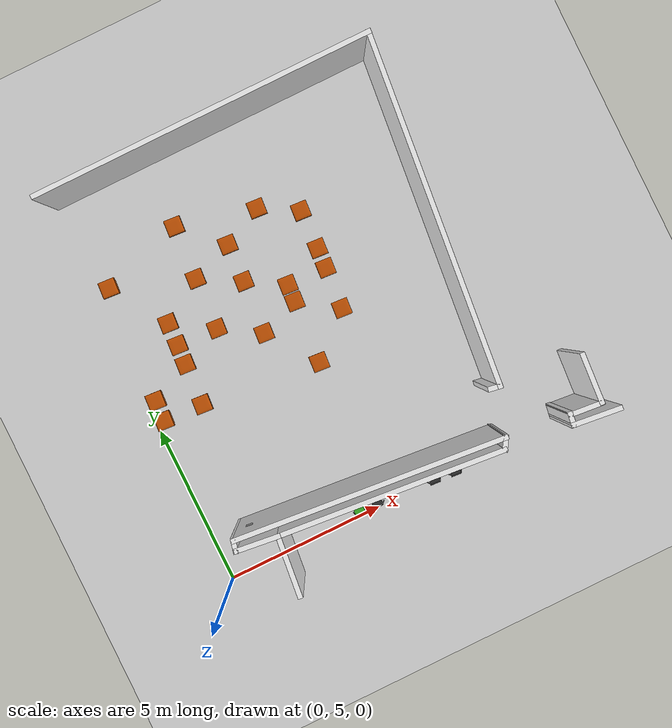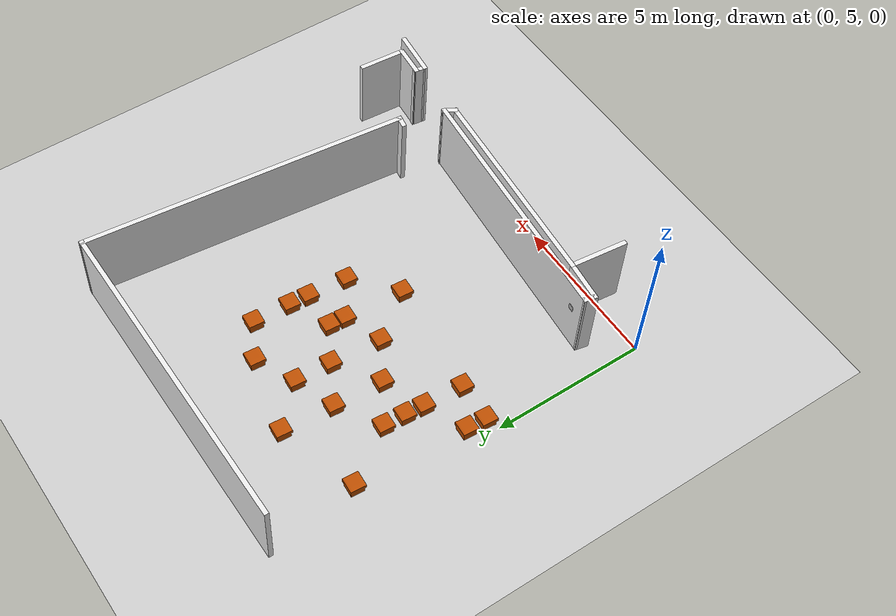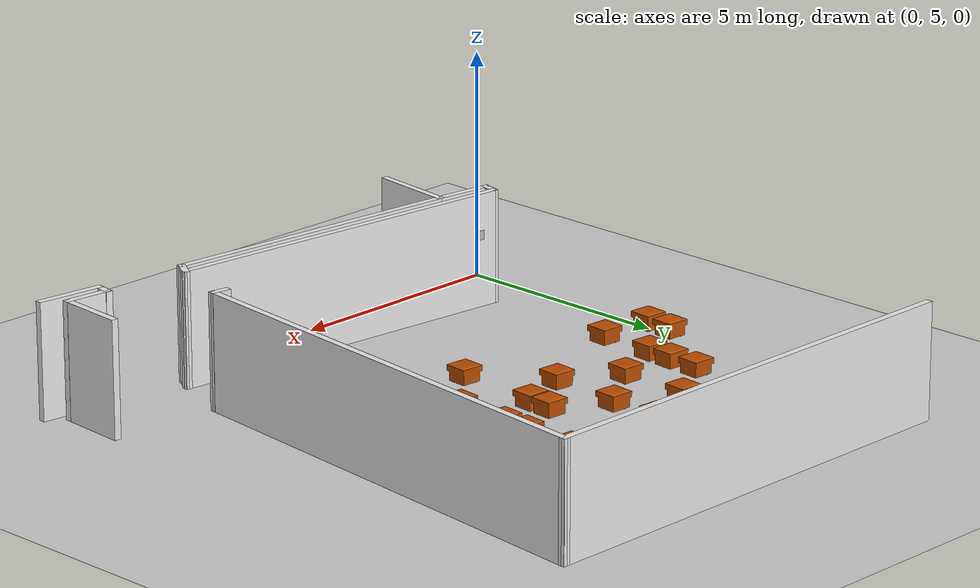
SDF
<sdf version="1.6">
 <world name="default">
  <model name="ground_plane">
   <static>1</static>
   <link name="link">
    <collision name="collision">
     <geometry><plane><normal>0 0 1</normal><size>100 100</size></plane></geometry>
     <surface><friction><ode><mu>100</mu><mu2>50</mu2></ode></friction></surface>
    </collision>
    <visual name="visual">
     <cast_shadows>0</cast_shadows>
     <geometry><plane><normal>0 0 1</normal><size>100 100</size></plane></geometry>
     <material>
      <script><uri>file://media/materials/scripts/gazebo.material</uri><name>Gazebo/Grey</name></script>
     </material>
    </visual>
   </link>
  </model>
  <model name="ucu_basic_frame.world">
   <link name="Wall_264">
    <pose>0.222214 2.68141 0 0 0 -1.79253</pose>
    <visual name="Wall_264_Visual">
     <pose>0 0 1.25 0 -0 0</pose>
     <geometry><box><size>0.445131 0.15 2.5</size></box></geometry>
     <material>
      <script><uri>file://media/materials/scripts/gazebo.material</uri><name>Gazebo/White</name></script>
      <ambient>1 1 1 1</ambient>
      <diffuse>1 1 1 1</diffuse>
      <specular>0 0 0 1</specular>
      <emissive>0 0 0 1</emissive>
     </material>
     <meta><layer>0</layer></meta>
    </visual>
    <collision name="Wall_264_Collision">
     <pose>0 0 1.25 0 -0 0</pose>
     <geometry><box><size>0.445131 0.15 2.5</size></box></geometry>
     <surface>
      <friction>
       <ode><mu>1</mu><mu2>1</mu2><fdir1>0 0 0</fdir1><slip1>0</slip1><slip2>0</slip2></ode>
       <torsional>
        <coefficient>1</coefficient>
        <patch_radius>0</patch_radius>
        <surface_radius>0</surface_radius>
        <use_patch_radius>1</use_patch_radius>
        <ode><slip>0</slip></ode>
       </torsional>
      </friction>
      <bounce><restitution_coefficient>0</restitution_coefficient><threshold>1e+06</threshold></bounce>
      <contact>
       <collide_without_contact>0</collide_without_contact>
       <collide_without_contact_bitmask>1</collide_without_contact_bitmask>
       <collide_bitmask>1</collide_bitmask>
       <ode>
        <soft_cfm>0</soft_cfm>
        <soft_erp>0.2</soft_erp>
        <kp>1e+13</kp>
        <kd>1</kd>
        <max_vel>0.01</max_vel>
        <min_depth>0</min_depth>
       </ode>
       <bullet>
        <split_impulse>1</split_impulse>
        <split_impulse_penetration_threshold>-0.01</split_impulse_penetration_threshold>
        <soft_cfm>0</soft_cfm>
        <soft_erp>0.2</soft_erp>
        <kp>1e+13</kp>
        <kd>1</kd>
       </bullet>
      </contact>
     </surface>
    </collision>
   </link>
   <link name="Wall_265">
    <pose>0.817825 2.46551 0 0 0 -0.1169</pose>
    <inertial>
     <mass>1</mass>
     <inertia><ixx>1</ixx><ixy>0</ixy><ixz>0</ixz><iyy>1</iyy><iyz>0</iyz><izz>1</izz></inertia>
    </inertial>
    <visual name="Wall_265_Visual">
     <pose>0 0 1.25 0 -0 0</pose>
     <geometry><box><size>1.38367 0.15 2.5</size></box></geometry>
     <material>
      <script><uri>file://media/materials/scripts/gazebo.material</uri><name>Gazebo/White</name></script>
      <ambient>1 1 1 1</ambient>
      <diffuse>1 1 1 1</diffuse>
      <specular>0 0 0 1</specular>
      <emissive>0 0 0 1</emissive>
      <shader type="vertex"><normal_map>__default__</normal_map></shader>
     </material>
     <meta><layer>0</layer></meta>
    </visual>
    <collision name="Wall_265_Collision">
     <pose>0 0 1.25 0 -0 0</pose>
     <geometry><box><size>1.38367 0.15 2.5</size></box></geometry>
     <surface>
      <friction>
       <ode><mu>1</mu><mu2>1</mu2><fdir1>0 0 0</fdir1><slip1>0</slip1><slip2>0</slip2></ode>
       <torsional>
        <coefficient>1</coefficient>
        <patch_radius>0</patch_radius>
        <surface_radius>0</surface_radius>
        <use_patch_radius>1</use_patch_radius>
        <ode><slip>0</slip></ode>
       </torsional>
      </friction>
      <bounce><restitution_coefficient>0</restitution_coefficient><threshold>1e+06</threshold></bounce>
      <contact>
       <collide_without_contact>0</collide_without_contact>
       <collide_without_contact_bitmask>1</collide_without_contact_bitmask>
       <collide_bitmask>1</collide_bitmask>
       <ode>
        <soft_cfm>0</soft_cfm>
        <soft_erp>0.2</soft_erp>
        <kp>1e+13</kp>
        <kd>1</kd>
        <max_vel>0.01</max_vel>
        <min_depth>0</min_depth>
       </ode>
       <bullet>
        <split_impulse>1</split_impulse>
        <split_impulse_penetration_threshold>-0.01</split_impulse_penetration_threshold>
        <soft_cfm>0</soft_cfm>
        <soft_erp>0.2</soft_erp>
        <kp>1e+13</kp>
        <kd>1</kd>
       </bullet>
      </contact>
     </surface>
    </collision>
   </link>
   <link name="Wall_267">
    <pose>4.30052 2.44738 0 0 0 -0.093156</pose>
    <visual name="Wall_267_Visual">
     <pose>0 0 1.25 0 -0 0</pose>
     <geometry><box><size>8.27695 0.15 2.5</size></box></geometry>
     <material>
      <script><uri>file://media/materials/scripts/gazebo.material</uri><name>Gazebo/White</name></script>
      <ambient>1 1 1 1</ambient>
      <diffuse>1 1 1 1</diffuse>
      <specular>0 0 0 1</specular>
      <emissive>0 0 0 1</emissive>
     </material>
     <meta><layer>0</layer></meta>
    </visual>
    <collision name="Wall_267_Collision">
     <pose>0 0 1.25 0 -0 0</pose>
     <geometry><box><size>8.27695 0.15 2.5</size></box></geometry>
     <surface>
      <friction>
       <ode><mu>1</mu><mu2>1</mu2><fdir1>0 0 0</fdir1><slip1>0</slip1><slip2>0</slip2></ode>
       <torsional>
        <coefficient>1</coefficient>
        <patch_radius>0</patch_radius>
        <surface_radius>0</surface_radius>
        <use_patch_radius>1</use_patch_radius>
        <ode><slip>0</slip></ode>
       </torsional>
      </friction>
      <bounce><restitution_coefficient>0</restitution_coefficient><threshold>1e+06</threshold></bounce>
      <contact>
       <collide_without_contact>0</collide_without_contact>
       <collide_without_contact_bitmask>1</collide_without_contact_bitmask>
       <collide_bitmask>1</collide_bitmask>
       <ode>
        <soft_cfm>0</soft_cfm>
        <soft_erp>0.2</soft_erp>
        <kp>1e+13</kp>
        <kd>1</kd>
        <max_vel>0.01</max_vel>
        <min_depth>0</min_depth>
       </ode>
       <bullet>
        <split_impulse>1</split_impulse>
        <split_impulse_penetration_threshold>-0.01</split_impulse_penetration_threshold>
        <soft_cfm>0</soft_cfm>
        <soft_erp>0.2</soft_erp>
        <kp>1e+13</kp>
        <kd>1</kd>
       </bullet>
      </contact>
     </surface>
    </collision>
   </link>
   <link name="Wall_268">
    <pose>8.26147 1.92273 0 0 0 -2.09559</pose>
    <visual name="Wall_268_Visual">
     <pose>0 0 1.25 0 -0 0</pose>
     <geometry><box><size>0.488919 0.15 2.5</size></box></geometry>
     <material>
      <script><uri>file://media/materials/scripts/gazebo.material</uri><name>Gazebo/White</name></script>
      <ambient>1 1 1 1</ambient>
      <diffuse>1 1 1 1</diffuse>
      <specular>0 0 0 1</specular>
      <emissive>0 0 0 1</emissive>
     </material>
     <meta><layer>0</layer></meta>
    </visual>
    <collision name="Wall_268_Collision">
     <pose>0 0 1.25 0 -0 0</pose>
     <geometry><box><size>0.488919 0.15 2.5</size></box></geometry>
     <surface>
      <friction>
       <ode><mu>1</mu><mu2>1</mu2><fdir1>0 0 0</fdir1><slip1>0</slip1><slip2>0</slip2></ode>
       <torsional>
        <coefficient>1</coefficient>
        <patch_radius>0</patch_radius>
        <surface_radius>0</surface_radius>
        <use_patch_radius>1</use_patch_radius>
        <ode><slip>0</slip></ode>
       </torsional>
      </friction>
      <bounce><restitution_coefficient>0</restitution_coefficient><threshold>1e+06</threshold></bounce>
      <contact>
       <collide_without_contact>0</collide_without_contact>
       <collide_without_contact_bitmask>1</collide_without_contact_bitmask>
       <collide_bitmask>1</collide_bitmask>
       <ode>
        <soft_cfm>0</soft_cfm>
        <soft_erp>0.2</soft_erp>
        <kp>1e+13</kp>
        <kd>1</kd>
        <max_vel>0.01</max_vel>
        <min_depth>0</min_depth>
       </ode>
       <bullet>
        <split_impulse>1</split_impulse>
        <split_impulse_penetration_threshold>-0.01</split_impulse_penetration_threshold>
        <soft_cfm>0</soft_cfm>
        <soft_erp>0.2</soft_erp>
        <kp>1e+13</kp>
        <kd>1</kd>
       </bullet>
      </contact>
     </surface>
    </collision>
   </link>
   <link name="Wall_269">
    <pose>4.80351 2.08482 0 0 -0 3.05031</pose>
    <visual name="Wall_269_Visual">
     <pose>0 0 1.25 0 -0 0</pose>
     <geometry><box><size>6.92432 0.15 2.5</size></box></geometry>
     <material>
      <script><uri>file://media/materials/scripts/gazebo.material</uri><name>Gazebo/White</name></script>
      <ambient>1 1 1 1</ambient>
      <diffuse>1 1 1 1</diffuse>
      <specular>0 0 0 1</specular>
      <emissive>0 0 0 1</emissive>
     </material>
     <meta><layer>0</layer></meta>
    </visual>
    <collision name="Wall_269_Collision">
     <pose>0 0 1.25 0 -0 0</pose>
     <geometry><box><size>6.92432 0.15 2.5</size></box></geometry>
     <surface>
      <friction>
       <ode><mu>1</mu><mu2>1</mu2><fdir1>0 0 0</fdir1><slip1>0</slip1><slip2>0</slip2></ode>
       <torsional>
        <coefficient>1</coefficient>
        <patch_radius>0</patch_radius>
        <surface_radius>0</surface_radius>
        <use_patch_radius>1</use_patch_radius>
        <ode><slip>0</slip></ode>
       </torsional>
      </friction>
      <bounce><restitution_coefficient>0</restitution_coefficient><threshold>1e+06</threshold></bounce>
      <contact>
       <collide_without_contact>0</collide_without_contact>
       <collide_without_contact_bitmask>1</collide_without_contact_bitmask>
       <collide_bitmask>1</collide_bitmask>
       <ode>
        <soft_cfm>0</soft_cfm>
        <soft_erp>0.2</soft_erp>
        <kp>1e+13</kp>
        <kd>1</kd>
        <max_vel>0.01</max_vel>
        <min_depth>0</min_depth>
       </ode>
       <bullet>
        <split_impulse>1</split_impulse>
        <split_impulse_penetration_threshold>-0.01</split_impulse_penetration_threshold>
        <soft_cfm>0</soft_cfm>
        <soft_erp>0.2</soft_erp>
        <kp>1e+13</kp>
        <kd>1</kd>
       </bullet>
      </contact>
     </surface>
    </collision>
   </link>
   <link name="Wall_272">
    <pose>1.33783 1.51364 0 0 0 -1.67567</pose>
    <visual name="Wall_272_Visual">
     <pose>0 0 1.25 0 -0 0</pose>
     <geometry><box><size>1.91958 0.15 2.5</size></box></geometry>
     <material>
      <script><uri>file://media/materials/scripts/gazebo.material</uri><name>Gazebo/White</name></script>
      <ambient>1 1 1 1</ambient>
      <diffuse>1 1 1 1</diffuse>
      <specular>0 0 0 1</specular>
      <emissive>0 0 0 1</emissive>
     </material>
     <meta><layer>0</layer></meta>
    </visual>
    <collision name="Wall_272_Collision">
     <pose>0 0 1.25 0 -0 0</pose>
     <geometry><box><size>1.91958 0.15 2.5</size></box></geometry>
     <surface>
      <friction>
       <ode><mu>1</mu><mu2>1</mu2><fdir1>0 0 0</fdir1><slip1>0</slip1><slip2>0</slip2></ode>
       <torsional>
        <coefficient>1</coefficient>
        <patch_radius>0</patch_radius>
        <surface_radius>0</surface_radius>
        <use_patch_radius>1</use_patch_radius>
        <ode><slip>0</slip></ode>
       </torsional>
      </friction>
      <bounce><restitution_coefficient>0</restitution_coefficient><threshold>1e+06</threshold></bounce>
      <contact>
       <collide_without_contact>0</collide_without_contact>
       <collide_without_contact_bitmask>1</collide_without_contact_bitmask>
       <collide_bitmask>1</collide_bitmask>
       <ode>
        <soft_cfm>0</soft_cfm>
        <soft_erp>0.2</soft_erp>
        <kp>1e+13</kp>
        <kd>1</kd>
        <max_vel>0.01</max_vel>
        <min_depth>0</min_depth>
       </ode>
       <bullet>
        <split_impulse>1</split_impulse>
        <split_impulse_penetration_threshold>-0.01</split_impulse_penetration_threshold>
        <soft_cfm>0</soft_cfm>
        <soft_erp>0.2</soft_erp>
        <kp>1e+13</kp>
        <kd>1</kd>
       </bullet>
      </contact>
     </surface>
    </collision>
   </link>
   <link name="Wall_309">
    <pose>10.8836 1.47565 0 0 -0 3.03093</pose>
    <visual name="Wall_309_Visual">
     <pose>0 0 1.25 0 -0 0</pose>
     <geometry><box><size>1.52674 0.15 2.5</size></box></geometry>
     <material>
      <script><uri>file://media/materials/scripts/gazebo.material</uri><name>Gazebo/White</name></script>
      <ambient>1 1 1 1</ambient>
      <diffuse>1 1 1 1</diffuse>
      <specular>0 0 0 1</specular>
      <emissive>0 0 0 1</emissive>
     </material>
     <meta><layer>0</layer></meta>
    </visual>
    <collision name="Wall_309_Collision">
     <pose>0 0 1.25 0 -0 0</pose>
     <geometry><box><size>1.52674 0.15 2.5</size></box></geometry>
     <surface>
      <friction>
       <ode><mu>1</mu><mu2>1</mu2><fdir1>0 0 0</fdir1><slip1>0</slip1><slip2>0</slip2></ode>
       <torsional>
        <coefficient>1</coefficient>
        <patch_radius>0</patch_radius>
        <surface_radius>0</surface_radius>
        <use_patch_radius>1</use_patch_radius>
        <ode><slip>0</slip></ode>
       </torsional>
      </friction>
      <bounce><restitution_coefficient>0</restitution_coefficient><threshold>1e+06</threshold></bounce>
      <contact>
       <collide_without_contact>0</collide_without_contact>
       <collide_without_contact_bitmask>1</collide_without_contact_bitmask>
       <collide_bitmask>1</collide_bitmask>
       <ode>
        <soft_cfm>0</soft_cfm>
        <soft_erp>0.2</soft_erp>
        <kp>1e+13</kp>
        <kd>1</kd>
        <max_vel>0.01</max_vel>
        <min_depth>0</min_depth>
       </ode>
       <bullet>
        <split_impulse>1</split_impulse>
        <split_impulse_penetration_threshold>-0.01</split_impulse_penetration_threshold>
        <soft_cfm>0</soft_cfm>
        <soft_erp>0.2</soft_erp>
        <kp>1e+13</kp>
        <kd>1</kd>
       </bullet>
      </contact>
     </surface>
    </collision>
   </link>
   <link name="Wall_310">
    <pose>10.2225 1.70746 0 0 -0 1.42134</pose>
    <visual name="Wall_310_Visual">
     <pose>0 0 1.25 0 -0 0</pose>
     <geometry><box><size>0.465001 0.15 2.5</size></box></geometry>
     <material>
      <script><uri>file://media/materials/scripts/gazebo.material</uri><name>Gazebo/White</name></script>
      <ambient>1 1 1 1</ambient>
      <diffuse>1 1 1 1</diffuse>
      <specular>0 0 0 1</specular>
      <emissive>0 0 0 1</emissive>
     </material>
     <meta><layer>0</layer></meta>
    </visual>
    <collision name="Wall_310_Collision">
     <pose>0 0 1.25 0 -0 0</pose>
     <geometry><box><size>0.465001 0.15 2.5</size></box></geometry>
     <surface>
      <friction>
       <ode><mu>1</mu><mu2>1</mu2><fdir1>0 0 0</fdir1><slip1>0</slip1><slip2>0</slip2></ode>
       <torsional>
        <coefficient>1</coefficient>
        <patch_radius>0</patch_radius>
        <surface_radius>0</surface_radius>
        <use_patch_radius>1</use_patch_radius>
        <ode><slip>0</slip></ode>
       </torsional>
      </friction>
      <bounce><restitution_coefficient>0</restitution_coefficient><threshold>1e+06</threshold></bounce>
      <contact>
       <collide_without_contact>0</collide_without_contact>
       <collide_without_contact_bitmask>1</collide_without_contact_bitmask>
       <collide_bitmask>1</collide_bitmask>
       <ode>
        <soft_cfm>0</soft_cfm>
        <soft_erp>0.2</soft_erp>
        <kp>1e+13</kp>
        <kd>1</kd>
        <max_vel>0.01</max_vel>
        <min_depth>0</min_depth>
       </ode>
       <bullet>
        <split_impulse>1</split_impulse>
        <split_impulse_penetration_threshold>-0.01</split_impulse_penetration_threshold>
        <soft_cfm>0</soft_cfm>
        <soft_erp>0.2</soft_erp>
        <kp>1e+13</kp>
        <kd>1</kd>
       </bullet>
      </contact>
     </surface>
    </collision>
   </link>
   <link name="Wall_311">
    <pose>10.7146 1.80243 0 0 0 -0.093477</pose>
    <visual name="Wall_311_Visual">
     <pose>0 0 1.25 0 -0 0</pose>
     <geometry><box><size>1.0913 0.15 2.5</size></box></geometry>
     <material>
      <script><uri>file://media/materials/scripts/gazebo.material</uri><name>Gazebo/White</name></script>
      <ambient>1 1 1 1</ambient>
      <diffuse>1 1 1 1</diffuse>
      <specular>0 0 0 1</specular>
      <emissive>0 0 0 1</emissive>
     </material>
     <meta><layer>0</layer></meta>
    </visual>
    <collision name="Wall_311_Collision">
     <pose>0 0 1.25 0 -0 0</pose>
     <geometry><box><size>1.0913 0.15 2.5</size></box></geometry>
     <surface>
      <friction>
       <ode><mu>1</mu><mu2>1</mu2><fdir1>0 0 0</fdir1><slip1>0</slip1><slip2>0</slip2></ode>
       <torsional>
        <coefficient>1</coefficient>
        <patch_radius>0</patch_radius>
        <surface_radius>0</surface_radius>
        <use_patch_radius>1</use_patch_radius>
        <ode><slip>0</slip></ode>
       </torsional>
      </friction>
      <bounce><restitution_coefficient>0</restitution_coefficient><threshold>1e+06</threshold></bounce>
      <contact>
       <collide_without_contact>0</collide_without_contact>
       <collide_without_contact_bitmask>1</collide_without_contact_bitmask>
       <collide_bitmask>1</collide_bitmask>
       <ode>
        <soft_cfm>0</soft_cfm>
        <soft_erp>0.2</soft_erp>
        <kp>1e+13</kp>
        <kd>1</kd>
        <max_vel>0.01</max_vel>
        <min_depth>0</min_depth>
       </ode>
       <bullet>
        <split_impulse>1</split_impulse>
        <split_impulse_penetration_threshold>-0.01</split_impulse_penetration_threshold>
        <soft_cfm>0</soft_cfm>
        <soft_erp>0.2</soft_erp>
        <kp>1e+13</kp>
        <kd>1</kd>
       </bullet>
      </contact>
     </surface>
    </collision>
   </link>
   <link name="Wall_313">
    <pose>11.2333 2.47933 0 0 -0 1.49967</pose>
    <visual name="Wall_313_Visual">
     <pose>0 0 1.25 0 -0 0</pose>
     <geometry><box><size>1.56155 0.15 2.5</size></box></geometry>
     <material>
      <script><uri>file://media/materials/scripts/gazebo.material</uri><name>Gazebo/White</name></script>
      <ambient>1 1 1 1</ambient>
      <diffuse>1 1 1 1</diffuse>
      <specular>0 0 0 1</specular>
      <emissive>0 0 0 1</emissive>
     </material>
     <meta><layer>0</layer></meta>
    </visual>
    <collision name="Wall_313_Collision">
     <pose>0 0 1.25 0 -0 0</pose>
     <geometry><box><size>1.56155 0.15 2.5</size></box></geometry>
     <surface>
      <friction>
       <ode><mu>1</mu><mu2>1</mu2><fdir1>0 0 0</fdir1><slip1>0</slip1><slip2>0</slip2></ode>
       <torsional>
        <coefficient>1</coefficient>
        <patch_radius>0</patch_radius>
        <surface_radius>0</surface_radius>
        <use_patch_radius>1</use_patch_radius>
        <ode><slip>0</slip></ode>
       </torsional>
      </friction>
      <bounce><restitution_coefficient>0</restitution_coefficient><threshold>1e+06</threshold></bounce>
      <contact>
       <collide_without_contact>0</collide_without_contact>
       <collide_without_contact_bitmask>1</collide_without_contact_bitmask>
       <collide_bitmask>1</collide_bitmask>
       <ode>
        <soft_cfm>0</soft_cfm>
        <soft_erp>0.2</soft_erp>
        <kp>1e+13</kp>
        <kd>1</kd>
        <max_vel>0.01</max_vel>
        <min_depth>0</min_depth>
       </ode>
       <bullet>
        <split_impulse>1</split_impulse>
        <split_impulse_penetration_threshold>-0.01</split_impulse_penetration_threshold>
        <soft_cfm>0</soft_cfm>
        <soft_erp>0.2</soft_erp>
        <kp>1e+13</kp>
        <kd>1</kd>
       </bullet>
      </contact>
     </surface>
    </collision>
   </link>
   <link name="Wall_320">
    <pose>4.68498 13.9093 0 0 -0 0.000568</pose>
    <visual name="Wall_320_Visual">
     <pose>0 0 1.25 0 -0 0</pose>
     <geometry><box><size>10.5597 0.15 2.5</size></box></geometry>
     <material>
      <script><uri>file://media/materials/scripts/gazebo.material</uri><name>Gazebo/White</name></script>
      <ambient>1 1 1 1</ambient>
      <diffuse>1 1 1 1</diffuse>
      <specular>0 0 0 1</specular>
      <emissive>0 0 0 1</emissive>
     </material>
     <meta><layer>0</layer></meta>
    </visual>
    <collision name="Wall_320_Collision">
     <pose>0 0 1.25 0 -0 0</pose>
     <geometry><box><size>10.5597 0.15 2.5</size></box></geometry>
     <surface>
      <friction>
       <ode><mu>1</mu><mu2>1</mu2><fdir1>0 0 0</fdir1><slip1>0</slip1><slip2>0</slip2></ode>
       <torsional>
        <coefficient>1</coefficient>
        <patch_radius>0</patch_radius>
        <surface_radius>0</surface_radius>
        <use_patch_radius>1</use_patch_radius>
        <ode><slip>0</slip></ode>
       </torsional>
      </friction>
      <bounce><restitution_coefficient>0</restitution_coefficient><threshold>1e+06</threshold></bounce>
      <contact>
       <collide_without_contact>0</collide_without_contact>
       <collide_without_contact_bitmask>1</collide_without_contact_bitmask>
       <collide_bitmask>1</collide_bitmask>
       <ode>
        <soft_cfm>0</soft_cfm>
        <soft_erp>0.2</soft_erp>
        <kp>1e+13</kp>
        <kd>1</kd>
        <max_vel>0.01</max_vel>
        <min_depth>0</min_depth>
       </ode>
       <bullet>
        <split_impulse>1</split_impulse>
        <split_impulse_penetration_threshold>-0.01</split_impulse_penetration_threshold>
        <soft_cfm>0</soft_cfm>
        <soft_erp>0.2</soft_erp>
        <kp>1e+13</kp>
        <kd>1</kd>
       </bullet>
      </contact>
     </surface>
    </collision>
   </link>
   <link name="Wall_323">
    <pose>8.69612 3.45178 0 0 0 -0.166846</pose>
    <visual name="Wall_323_Visual">
     <pose>0 0 1.25 0 -0 0</pose>
     <geometry><box><size>0.432266 0.15 2.5</size></box></geometry>
     <material>
      <script><uri>file://media/materials/scripts/gazebo.material</uri><name>Gazebo/White</name></script>
      <ambient>1 1 1 1</ambient>
      <diffuse>1 1 1 1</diffuse>
      <specular>0 0 0 1</specular>
      <emissive>0 0 0 1</emissive>
     </material>
     <meta><layer>0</layer></meta>
    </visual>
    <collision name="Wall_323_Collision">
     <pose>0 0 1.25 0 -0 0</pose>
     <geometry><box><size>0.432266 0.15 2.5</size></box></geometry>
     <surface>
      <friction>
       <ode><mu>1</mu><mu2>1</mu2><fdir1>0 0 0</fdir1><slip1>0</slip1><slip2>0</slip2></ode>
       <torsional>
        <coefficient>1</coefficient>
        <patch_radius>0</patch_radius>
        <surface_radius>0</surface_radius>
        <use_patch_radius>1</use_patch_radius>
        <ode><slip>0</slip></ode>
       </torsional>
      </friction>
      <bounce><restitution_coefficient>0</restitution_coefficient><threshold>1e+06</threshold></bounce>
      <contact>
       <collide_without_contact>0</collide_without_contact>
       <collide_without_contact_bitmask>1</collide_without_contact_bitmask>
       <collide_bitmask>1</collide_bitmask>
       <ode>
        <soft_cfm>0</soft_cfm>
        <soft_erp>0.2</soft_erp>
        <kp>1e+13</kp>
        <kd>1</kd>
        <max_vel>0.01</max_vel>
        <min_depth>0</min_depth>
       </ode>
       <bullet>
        <split_impulse>1</split_impulse>
        <split_impulse_penetration_threshold>-0.01</split_impulse_penetration_threshold>
        <soft_cfm>0</soft_cfm>
        <soft_erp>0.2</soft_erp>
        <kp>1e+13</kp>
        <kd>1</kd>
       </bullet>
      </contact>
     </surface>
    </collision>
   </link>
   <link name="Wall_326">
    <pose>9.36257 8.67029 0 0 0 -1.67105</pose>
    <visual name="Wall_326_Visual">
     <pose>0 0 1.25 0 -0 0</pose>
     <geometry><box><size>10.6868 0.15 2.5</size></box></geometry>
     <material>
      <script><uri>file://media/materials/scripts/gazebo.material</uri><name>Gazebo/White</name></script>
      <ambient>1 1 1 1</ambient>
      <diffuse>1 1 1 1</diffuse>
      <specular>0 0 0 1</specular>
      <emissive>0 0 0 1</emissive>
     </material>
     <meta><layer>0</layer></meta>
    </visual>
    <collision name="Wall_326_Collision">
     <pose>0 0 1.25 0 -0 0</pose>
     <geometry><box><size>10.6868 0.15 2.5</size></box></geometry>
     <surface>
      <friction>
       <ode><mu>1</mu><mu2>1</mu2><fdir1>0 0 0</fdir1><slip1>0</slip1><slip2>0</slip2></ode>
       <torsional>
        <coefficient>1</coefficient>
        <patch_radius>0</patch_radius>
        <surface_radius>0</surface_radius>
        <use_patch_radius>1</use_patch_radius>
        <ode><slip>0</slip></ode>
       </torsional>
      </friction>
      <bounce><restitution_coefficient>0</restitution_coefficient><threshold>1e+06</threshold></bounce>
      <contact>
       <collide_without_contact>0</collide_without_contact>
       <collide_without_contact_bitmask>1</collide_without_contact_bitmask>
       <collide_bitmask>1</collide_bitmask>
       <ode>
        <soft_cfm>0</soft_cfm>
        <soft_erp>0.2</soft_erp>
        <kp>1e+13</kp>
        <kd>1</kd>
        <max_vel>0.01</max_vel>
        <min_depth>0</min_depth>
       </ode>
       <bullet>
        <split_impulse>1</split_impulse>
        <split_impulse_penetration_threshold>-0.01</split_impulse_penetration_threshold>
        <soft_cfm>0</soft_cfm>
        <soft_erp>0.2</soft_erp>
        <kp>1e+13</kp>
        <kd>1</kd>
       </bullet>
      </contact>
     </surface>
    </collision>
   </link>
   <static>1</static>
   <pose>0.7577 3.6363 0 0 -0 0</pose>
  </model>
  <include>
   <uri>model://robert_gazebo/models/classroom_chair_green</uri>
   <name>classroom_chair_015_1_2</name>
   <pose>4.42 5.32 0.445 0 0 -0.07</pose>
  </include>
  <include>
   <uri>model://robert_gazebo/models/classroom_chair_grey</uri>
   <name>classroom_chair_015_1_3</name>
   <pose>5 5.28 0.445 0 0 -0.07</pose>
  </include>
  <include>
   <uri>model://robert_gazebo/models/classroom_chair_grey</uri>
   <name>classroom_chair_015_2_1</name>
   <pose>6.86 5.15 0.445 0 0 -0.07</pose>
  </include>
  <include>
   <uri>model://robert_gazebo/models/classroom_chair_grey</uri>
   <name>classroom_chair_015_2_2</name>
   <pose>7.54 5.1 0.445 0 0 -0.07</pose>
  </include>
  <include>
   <uri>model://robert_gazebo/models/lectorium_chair/orange</uri>
   <name>lect_chair_orange_1</name>
   <pose>0.363014 10.911 0.37783 0.000123 -0.00123 3.07086</pose>
  </include>
  <include>
   <uri>model://robert_gazebo/models/lectorium_chair/orange</uri>
   <name>lect_chair_orange_2</name>
   <pose>0.321754 10.2692 0.377832 0.000123 -0.00123 3.07086</pose>
  </include>
  <include>
   <uri>model://robert_gazebo/models/lectorium_chair/orange</uri>
   <name>lect_chair_orange_3</name>
   <pose>0.58956 14.5715 0.377847 0.000123 -0.00123 3.07086</pose>
  </include>
  <include>
   <uri>model://robert_gazebo/models/lectorium_chair/orange</uri>
   <name>lect_chair_orange_4</name>
   <pose>1.58355 10.2041 0.37783 0.000123 -0.00123 3.07086</pose>
  </include>
  <include>
   <uri>model://robert_gazebo/models/lectorium_chair/orange</uri>
   <name>lect_chair_orange_5</name>
   <pose>2.97595 12.0598 0.37783 0.000123 -0.00123 3.07086</pose>
  </include>
  <include>
   <uri>model://robert_gazebo/models/lectorium_chair/orange</uri>
   <name>lect_chair_orange_6</name>
   <pose>3.06342 13.683 0.37783 0.000123 -0.00123 3.07086</pose>
  </include>
  <include>
   <uri>model://robert_gazebo/models/lectorium_chair/orange</uri>
   <name>lect_chair_orange_7</name>
   <pose>3.18063 15.3787 0.37783 0.000123 -0.00123 3.07086</pose>
  </include>
  <include>
   <uri>model://robert_gazebo/models/lectorium_chair/orange</uri>
   <name>lect_chair_orange_8</name>
   <pose>4.1962 11.3084 0.37783 0.000123 -0.00123 3.07086</pose>
  </include>
  <include>
   <uri>model://robert_gazebo/models/lectorium_chair/orange</uri>
   <name>lect_chair_orange_9</name>
   <pose>4.32701 12.9769 0.37783 0.000123 -0.00123 3.07086</pose>
  </include>
  <include>
   <uri>model://robert_gazebo/models/lectorium_chair/orange</uri>
   <name>lect_chair_orange_10</name>
   <pose>5.44034 11.758 0.37783 0.000123 -0.00123 3.07086</pose>
  </include>
  <include>
   <uri>model://robert_gazebo/models/lectorium_chair/orange</uri>
   <name>lect_chair_orange_11</name>
   <pose>5.30287 9.79544 0.37783 0.000123 -0.00123 3.07086</pose>
  </include>
  <include>
   <uri>model://robert_gazebo/models/lectorium_chair/orange</uri>
   <name>lect_chair_orange_12</name>
   <pose>5.47476 12.3015 0.37783 0.000123 -0.00123 3.07086</pose>
  </include>
  <include>
   <uri>model://robert_gazebo/models/lectorium_chair/orange</uri>
   <name>lect_chair_orange_13</name>
   <pose>5.64229 14.7762 0.37783 0.000123 -0.00123 3.07086</pose>
  </include>
  <include>
   <uri>model://robert_gazebo/models/lectorium_chair/orange</uri>
   <name>lect_chair_orange_14</name>
   <pose>6.80481 14.1275 0.37783 0.000123 -0.00123 3.07086</pose>
  </include>
  <include>
   <uri>model://robert_gazebo/models/lectorium_chair/orange</uri>
   <name>lect_chair_orange_15</name>
   <pose>6.75967 12.8942 0.37783 0.000123 -0.00123 3.07086</pose>
  </include>
  <include>
   <uri>model://robert_gazebo/models/lectorium_chair/orange</uri>
   <name>lect_chair_orange_16</name>
   <pose>6.7199 12.2561 0.37783 0.000123 -0.00123 3.07086</pose>
  </include>
  <include>
   <uri>model://robert_gazebo/models/lectorium_chair/orange</uri>
   <name>lect_chair_orange_17</name>
   <pose>6.61968 10.9544 0.37783 0.000123 -0.00123 3.07086</pose>
  </include>
  <include>
   <uri>model://robert_gazebo/models/lectorium_chair/orange</uri>
   <name>lect_chair_orange_18</name>
   <pose>4.38028 14.1793 0.37783 0.000123 -0.00123 3.07086</pose>
  </include>
  <include>
   <uri>model://robert_gazebo/models/lectorium_chair/orange</uri>
   <name>lect_chair_orange_19</name>
   <pose>1.65327 11.5083 0.37783 0.000123 -0.00123 3.07086</pose>
  </include>
  <include>
   <uri>model://robert_gazebo/models/lectorium_chair/orange</uri>
   <name>lect_chair_orange_20</name>
   <pose>1.69932 12.1276 0.37783 0.000123 -0.00123 3.07086</pose>
  </include>
  <include>
   <uri>model://robert_gazebo/models/lectorium_chair/orange</uri>
   <name>lect_chair_orange_21</name>
   <pose>1.72721 12.8434 0.37783 0.000123 -0.00123 3.07086</pose>
  </include>
  <include>
   <uri>model://robert_gazebo/models/qr/lectorium</uri>
   <name>qr_lectorium</name>
   <pose>1.46 6.52 1.6 0 0 -0.11</pose>
  </include>
 </world>
</sdf>
